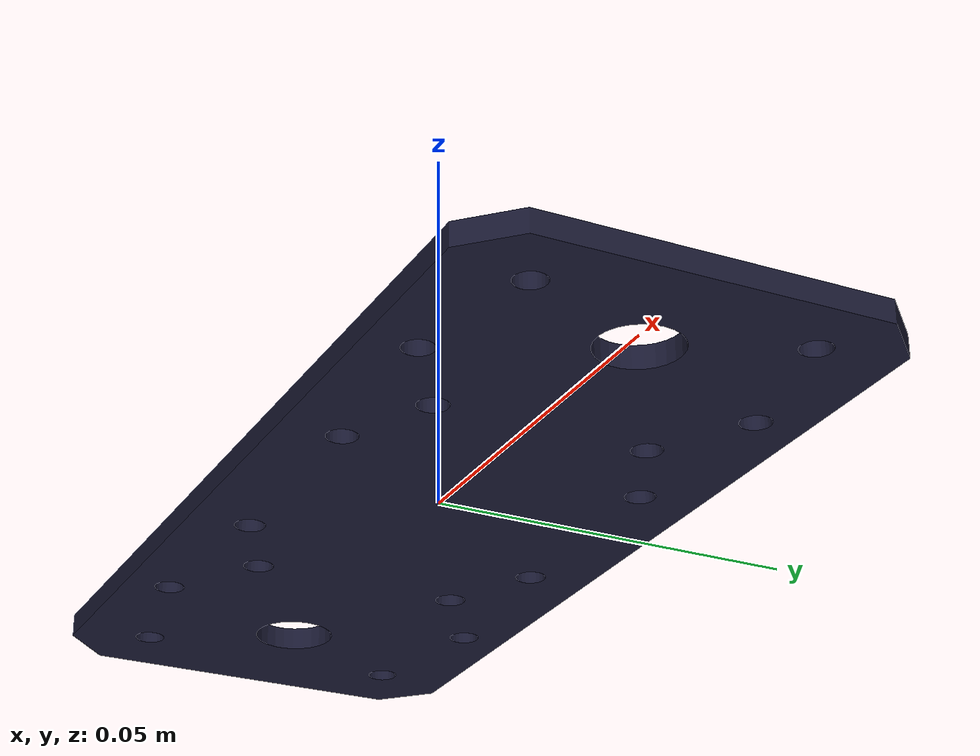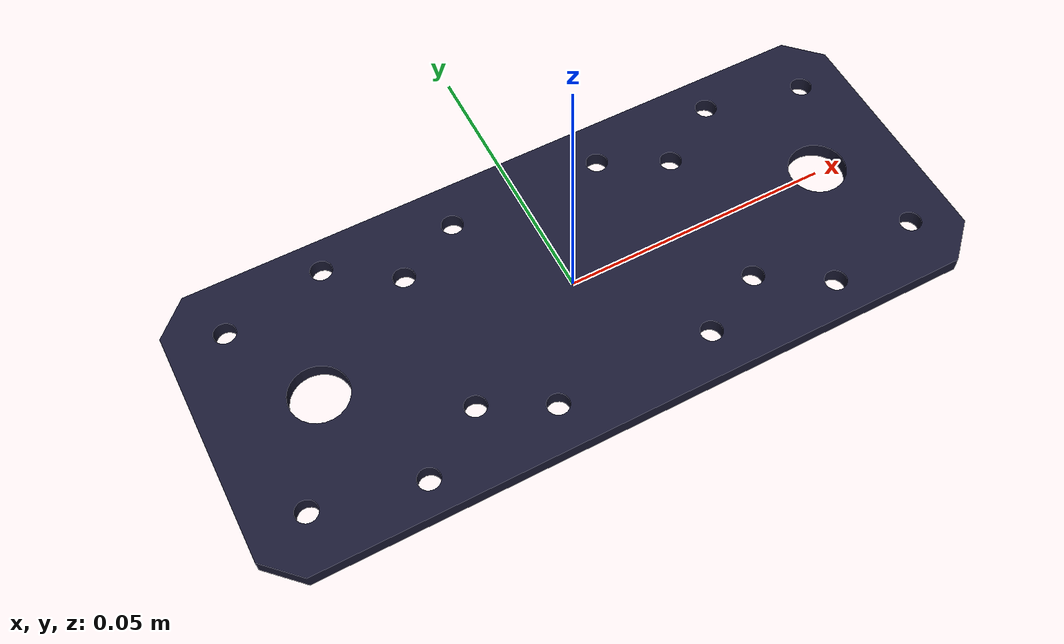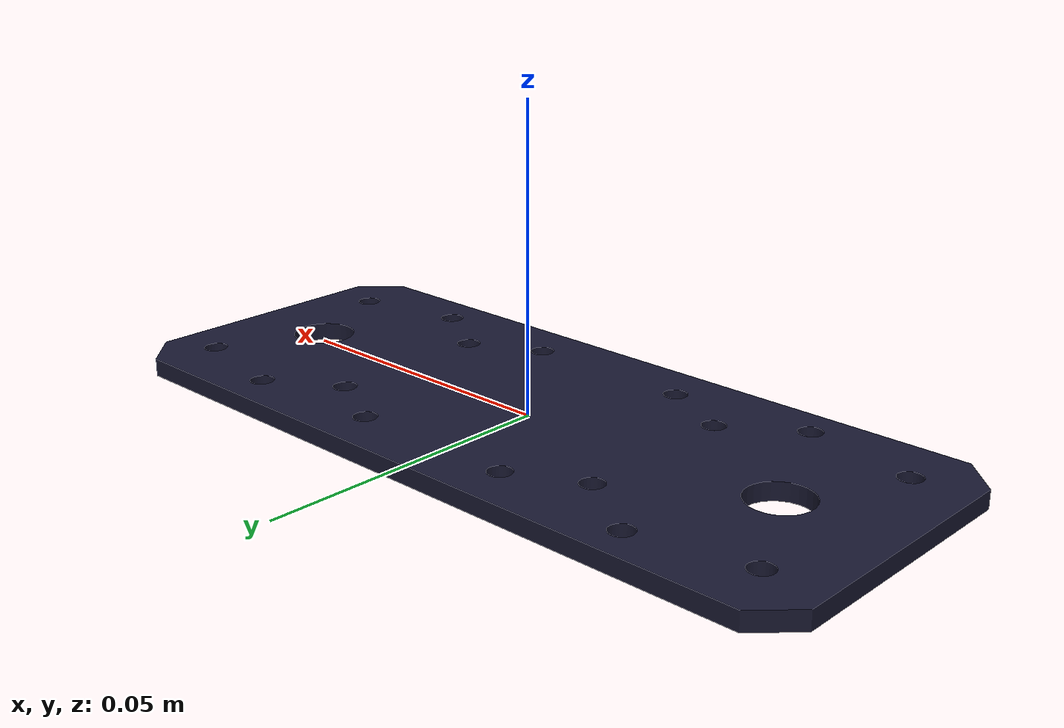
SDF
<?xml version='1.0'?>
<sdf version='1.6'>
  <model name='obj_01'>
    <static>false</static>
    <link name='link'>
      <collision name='collision'>
        <geometry>
          <box>
            <size>0.15 0.1 0.05</size>
          </box>
        </geometry>
      </collision>

      <visual name='visual'>
        <geometry>
          <mesh>
            <uri>model://object/mesh/obj.dae</uri>
            <scale>0.001 0.001 0.001</scale>
          </mesh>
        </geometry>
        <material>
          <ambient>0.1 0.1 0.1 1</ambient>
          <diffuse>0.1 0.1 0.2 1</diffuse>
          <specular>0 0 0 0</specular>
          <emissive>0 0 0 1</emissive>
        </material>
      </visual>
    </link>
  </model>
</sdf>
